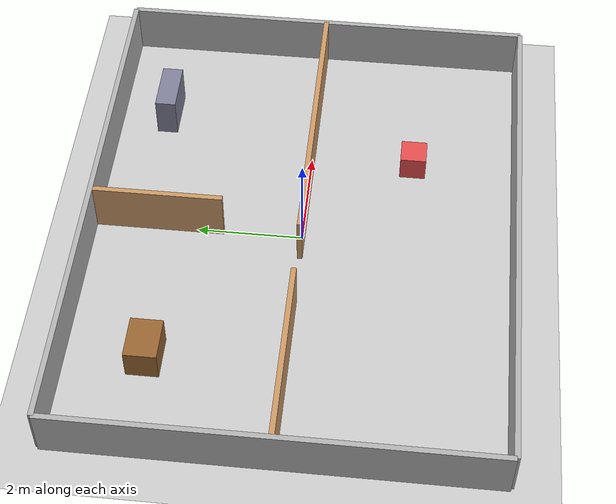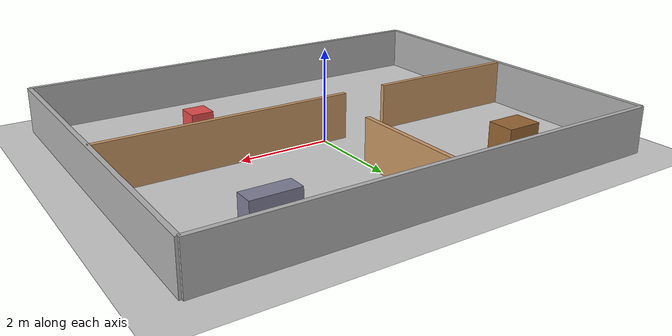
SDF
<?xml version="1.0" ?>
<sdf version="1.6">
  <world name="r550_test_house">

    <!-- 基础物理与光照 -->
    <include>
      <uri>model://sun</uri>
    </include>
    <include>
      <uri>model://ground_plane</uri>
    </include>

    <physics type="ode">
      <max_step_size>0.001</max_step_size>
      <real_time_factor>1</real_time_factor>
    </physics>

    <!-- ============== 外墙 ============== -->

    <!-- 南墙 (底部, y=-4) -->
    <model name="wall_south">
      <static>true</static>
      <pose>0 -4 0.5 0 0 0</pose>
      <link name="link">
        <collision name="collision">
          <geometry><box><size>10 0.1 1.0</size></box></geometry>
        </collision>
        <visual name="visual">
          <geometry><box><size>10 0.1 1.0</size></box></geometry>
          <material>
            <ambient>0.7 0.7 0.7 1</ambient>
            <diffuse>0.7 0.7 0.7 1</diffuse>
          </material>
        </visual>
      </link>
    </model>

    <!-- 北墙 (顶部, y=4) -->
    <model name="wall_north">
      <static>true</static>
      <pose>0 4 0.5 0 0 0</pose>
      <link name="link">
        <collision name="collision">
          <geometry><box><size>10 0.1 1.0</size></box></geometry>
        </collision>
        <visual name="visual">
          <geometry><box><size>10 0.1 1.0</size></box></geometry>
          <material>
            <ambient>0.7 0.7 0.7 1</ambient>
            <diffuse>0.7 0.7 0.7 1</diffuse>
          </material>
        </visual>
      </link>
    </model>

    <!-- 西墙 (左侧, x=-5) -->
    <model name="wall_west">
      <static>true</static>
      <pose>-5 0 0.5 0 0 0</pose>
      <link name="link">
        <collision name="collision">
          <geometry><box><size>0.1 8 1.0</size></box></geometry>
        </collision>
        <visual name="visual">
          <geometry><box><size>0.1 8 1.0</size></box></geometry>
          <material>
            <ambient>0.7 0.7 0.7 1</ambient>
            <diffuse>0.7 0.7 0.7 1</diffuse>
          </material>
        </visual>
      </link>
    </model>

    <!-- 东墙 (右侧, x=5) -->
    <model name="wall_east">
      <static>true</static>
      <pose>5 0 0.5 0 0 0</pose>
      <link name="link">
        <collision name="collision">
          <geometry><box><size>0.1 8 1.0</size></box></geometry>
        </collision>
        <visual name="visual">
          <geometry><box><size>0.1 8 1.0</size></box></geometry>
          <material>
            <ambient>0.7 0.7 0.7 1</ambient>
            <diffuse>0.7 0.7 0.7 1</diffuse>
          </material>
        </visual>
      </link>
    </model>

    <!-- ============== 内墙：水平隔墙 (y=0, 将空间分为上下两层) ============== -->

    <!-- 内墙左段 (x=-5 到 x=-1.5, 留出 1m 门洞在 x=-1 处) -->
    <model name="inner_wall_left">
      <static>true</static>
      <pose>-3.25 0 0.5 0 0 0</pose>
      <link name="link">
        <collision name="collision">
          <geometry><box><size>3.5 0.1 1.0</size></box></geometry>
        </collision>
        <visual name="visual">
          <geometry><box><size>3.5 0.1 1.0</size></box></geometry>
          <material>
            <ambient>0.8 0.6 0.4 1</ambient>
            <diffuse>0.8 0.6 0.4 1</diffuse>
          </material>
        </visual>
      </link>
    </model>

    <!-- 内墙右段 (x=-0.5 到 x=5, 门洞在 x=-1 到 x=-0.5 之间) -->
    <model name="inner_wall_right">
      <static>true</static>
      <pose>2.25 0 0.5 0 0 0</pose>
      <link name="link">
        <collision name="collision">
          <geometry><box><size>5.5 0.1 1.0</size></box></geometry>
        </collision>
        <visual name="visual">
          <geometry><box><size>5.5 0.1 1.0</size></box></geometry>
          <material>
            <ambient>0.8 0.6 0.4 1</ambient>
            <diffuse>0.8 0.6 0.4 1</diffuse>
          </material>
        </visual>
      </link>
    </model>

    <!-- ============== 内墙：竖直隔墙 (x=0, 将上层分为房间 A 和 B) ============== -->

    <!-- 竖直内墙上段 (y=1.5 到 y=4, 留出 1m 门洞在 y=0.5 到 y=1.5) -->
    <model name="inner_wall_vert_top">
      <static>true</static>
      <pose>0 2.75 0.5 0 0 0</pose>
      <link name="link">
        <collision name="collision">
          <geometry><box><size>0.1 2.5 1.0</size></box></geometry>
        </collision>
        <visual name="visual">
          <geometry><box><size>0.1 2.5 1.0</size></box></geometry>
          <material>
            <ambient>0.8 0.6 0.4 1</ambient>
            <diffuse>0.8 0.6 0.4 1</diffuse>
          </material>
        </visual>
      </link>
    </model>

    <!-- ============== 房间内障碍物 ============== -->

    <!-- 房间 A 中的桌子 -->
    <model name="table_room_a">
      <static>true</static>
      <pose>-3 2.5 0.3 0 0 0</pose>
      <link name="link">
        <collision name="collision">
          <geometry><box><size>0.8 0.6 0.6</size></box></geometry>
        </collision>
        <visual name="visual">
          <geometry><box><size>0.8 0.6 0.6</size></box></geometry>
          <material>
            <ambient>0.5 0.3 0.1 1</ambient>
            <diffuse>0.6 0.4 0.2 1</diffuse>
          </material>
        </visual>
      </link>
    </model>

    <!-- 房间 B 中的柜子 -->
    <model name="cabinet_room_b">
      <static>true</static>
      <pose>3 3 0.4 0 0 0</pose>
      <link name="link">
        <collision name="collision">
          <geometry><box><size>1.0 0.4 0.8</size></box></geometry>
        </collision>
        <visual name="visual">
          <geometry><box><size>1.0 0.4 0.8</size></box></geometry>
          <material>
            <ambient>0.4 0.4 0.5 1</ambient>
            <diffuse>0.5 0.5 0.6 1</diffuse>
          </material>
        </visual>
      </link>
    </model>

    <!-- 走廊中的箱子 -->
    <model name="box_corridor">
      <static>true</static>
      <pose>2 -2 0.25 0 0 0</pose>
      <link name="link">
        <collision name="collision">
          <geometry><box><size>0.5 0.5 0.5</size></box></geometry>
        </collision>
        <visual name="visual">
          <geometry><box><size>0.5 0.5 0.5</size></box></geometry>
          <material>
            <ambient>0.8 0.2 0.2 1</ambient>
            <diffuse>0.9 0.3 0.3 1</diffuse>
          </material>
        </visual>
      </link>
    </model>

  </world>
</sdf>
